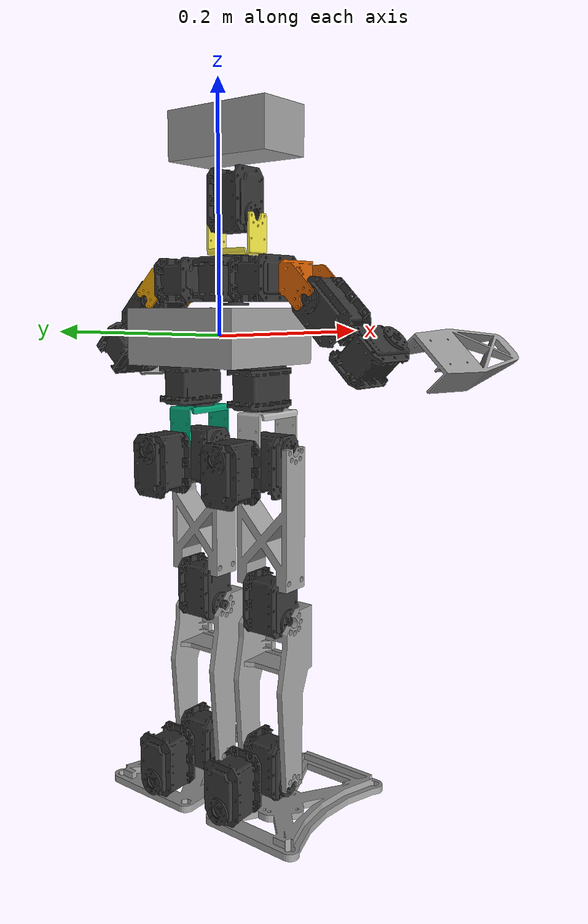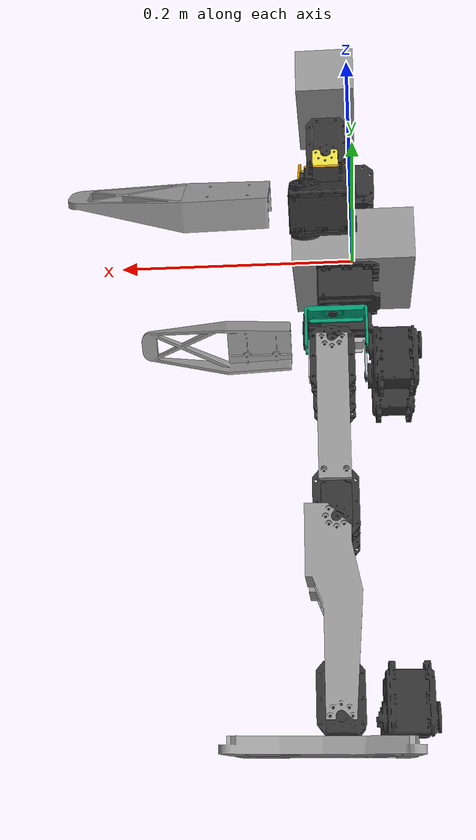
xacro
<?xml version="1.0" ?>

<robot name="boldbot" xmlns:xacro="http://www.ros.org/wiki/xacro">
  <!-- PLA: 1.24 g/cm^3 -->
  <xacro:property name="filament_density_full" value="1240" />
  <xacro:property name="infill" value=".5" />
  <xacro:property name="filament_density" value="${filament_density_full * infill}" />
  <xacro:property name="aluminium_density" value="2700" />

  <xacro:property name="damping" value="0" />
  <xacro:property name="friction" value="0.1" />

  <xacro:macro name="xmass" params="value"><mass value="${value}" /></xacro:macro>

  <xacro:macro name="inertial_cuboid" params="mass xyz rpy x_length y_length z_length">
    <inertial>
      <xacro:xmass value="${mass}" />
      <origin rpy="${rpy}" xyz="${xyz}"/>
      <inertia ixx="${mass * (y_length*y_length + z_length*z_length) / 12}" ixy="0.0" ixz="0.0"
               iyy="${mass * (x_length*x_length + z_length*z_length) / 12}" iyz="0.0"
               izz="${mass * (x_length*x_length + y_length*y_length) / 12}" />
    </inertial>
  </xacro:macro>

  <!--              iyy="${1 * (x_length*x_length + z_length*z_length) / 12}" iyz="0.0" -->

  <xacro:macro name="mx28" params="name x y z rpy">
    <link name="${name}">
      <visual>
        <origin xyz="${x} ${y} ${z}" rpy="${rpy}" />
        <geometry>
          <mesh filename="package://boldbot_description/meshes/mx28b.stl" scale="0.001 0.001 0.001" />
        </geometry>
        <material name="DarkGrey">
          <color rgba="0.20 0.20 0.20 1.0"/>
        </material>
      </visual>
      <collision>
        <origin xyz="${x} ${y} ${z}" rpy="${rpy}" />
        <geometry>
          <mesh filename="package://boldbot_description/meshes/mx28b.stl" scale="0.001 0.001 0.001" />
        </geometry>
      </collision>
      <xacro:inertial_cuboid mass="0.077" xyz="${x + 0.0105} ${y} ${z}" rpy="${rpy}" x_length="0.0506" y_length="0.0356" z_length="0.0355" />
    </link>
    <gazebo reference="${name}">
      <material>Gazebo/DarkGrey</material>
      <selfCollide>true</selfCollide>
    </gazebo>
  </xacro:macro>

  <!-- dummy first link, directly connects with torso -->
  <link name="base_link" />

  <joint name="base_joint" type="fixed">
    <parent link="base_link"/>
    <child link="torso"/>
    <origin xyz="0 0 0" rpy="0 0 0" />
  </joint>

  <link name="torso">
    <visual>
      <origin rpy="0 0 0" xyz="0 0 0" />
      <geometry>
        <box size="0.1 0.109 0.045"/>
      </geometry>
    </visual>
    <collision>
      <origin rpy="0 0 0" xyz="0 0 0" />
      <geometry>
        <box size="0.1 0.109 0.045"/>
      </geometry>
    </collision>
    <xacro:inertial_cuboid mass="0.31" xyz="0 0 0" rpy="0 0 0" x_length="0.1" y_length="0.109" z_length="0.045"/>
  </link>
  <gazebo reference="torso">
    <material>Gazebo/Grey</material>
    <selfCollide>true</selfCollide>
  </gazebo>

  <joint name="torso-mx28-head-pan" type="fixed">
    <parent link="torso" />
    <child link="mx28-head-pan" />
    <origin rpy="0 0 ${pi}" xyz="0.02 0 0.045" />
  </joint>

  <xacro:mx28 name="mx28-head-pan" x="0" y="0" z="0" rpy="0 0 0"/>

  <joint name="head-pan" type="revolute">
    <parent link="mx28-head-pan" />
    <child link="neck" />
    <origin rpy="0 0 ${-pi}" xyz="0 0 0.02" />
    <axis xyz="0 0 1" />
    <limit effort="2.8" velocity="5.6548668" lower="-2.6179939" upper="2.6179939" />
    <dynamics damping="${damping}" friction="${friction}" />
  </joint>

  <link name="neck">
    <visual>
      <origin rpy="0 0 0" xyz="0 0 0" />
      <geometry>
        <mesh filename="package://boldbot_description/meshes/neckbracketb.stl" scale="0.001 0.001 0.001"/>
      </geometry>
    </visual>
    <collision>>
      <origin rpy="0 0 0" xyz="0 0 0" />
      <geometry>
        <mesh filename="package://boldbot_description/meshes/neckbracketb.stl" scale="0.001 0.001 0.001"/>
      </geometry>
    </collision>
    <!-- mass doubled to increase stability -->
    <xacro:inertial_cuboid mass="0.025" xyz="0 0 0.029" rpy="0 0 0" x_length="0.025" y_length="0.045" z_length="0.0325" />
  </link>

  <joint name="head-tilt" type="revolute">
    <parent link="neck" />
    <child link="mx28-head-tilt" />
    <origin xyz="0 0 0.03" rpy="0 ${-pi / 2} ${-pi / 2}" />
    <axis xyz="0 0 1" />
    <limit effort="2.8" velocity="5.6548668" lower="-2.6179939" upper="2.6179939" />
    <dynamics damping="${damping}" friction="${friction}" />
  </joint>

  <xacro:mx28 name="mx28-head-tilt" x="0" y="0" z="0" rpy="0 0 0"/>

  <joint name="head-tilt-head" type="fixed">
    <parent link="mx28-head-tilt" />
    <child link="head" />
    <origin xyz="0.065 0 0" rpy="${pi / 2} 0 ${pi / 2}" />
  </joint>

  <link name="head">
    <visual>
      <origin rpy="0 0 0" xyz="0 0 0"/>
      <geometry>
        <box size="0.05 0.1 0.04" />
      </geometry>
    </visual>
    <collision>
      <origin rpy="0 0 0" xyz="0 0 0"/>
      <geometry>
        <box size="0.05 0.1 0.04" />
      </geometry>
    </collision>
    <xacro:inertial_cuboid mass="0.2" xyz="0 0 0" rpy="0 0 0" x_length="0.05" y_length="0.1" z_length="0.04" />
  </link>
  <gazebo reference="head">
    <material>Gazebo/Grey</material>
    <selfCollide>true</selfCollide>
  </gazebo>

  <joint name="head-gaze" type="fixed">
    <parent link="head" />
    <child link="gaze" />
    <origin xyz="0 0 0" rpy="0 0 0" />
  </joint>

  <link name="gaze">
  </link>

  <!-- Arms -->

  <xacro:macro name="arm" params="side">
    <xacro:property name="lr" value="${1 if side == 'l' else -1}" />

    <joint name="torso-mx28-shoulder-pitch-${side}" type="fixed">
      <parent link="torso" />
      <child link="mx28-shoulder-pitch-${side}" />
      <origin xyz="0.02 ${lr * 0.04} 0.045" rpy="${lr * pi / 2} 0 ${pi}" />
    </joint>

    <xacro:mx28 name="mx28-shoulder-pitch-${side}" x="0" y="0" z="0" rpy="0 0 0"/>

    <joint name="shoulder-pitch-${side}" type="revolute">
      <parent link="mx28-shoulder-pitch-${side}" />
      <child link="shoulder-${side}" />
      <origin xyz="0 0 0.02" rpy="0 0 0" />
      <axis xyz="0 0 1" />
      <limit effort="2.8" velocity="5.6548668" lower="-2.6179939" upper="2.6179939" />
      <dynamics damping="${damping}" friction="${friction}" />
    </joint>

    <link name="shoulder-${side}">
      <visual>
        <origin xyz="0 0 0" rpy="${pi / 2} 0 ${pi if side == 'l' else 0}" />
        <geometry>
          <mesh filename="package://boldbot_description/meshes/shoulderbracketb.stl" scale="0.001 0.001 0.001"/>
        </geometry>
      </visual>
      <xacro:inertial_cuboid mass="0.025" xyz="0 ${lr * -0.0025} 0.018" rpy="0 0 0" x_length="0.044" y_length="0.0332" z_length="0.038" />
    </link>

    <joint name="shoulder-roll-${side}" type="revolute">
      <parent link="shoulder-${side}" />
      <child link="mx28-shoulder-roll-${side}" />
      <origin xyz="0 ${lr * -0.016} 0.025" rpy="${lr * pi / 2} ${-pi / 4} ${-lr * pi / 2}" />
      <axis xyz="0 0 1" />
      <limit effort="2.8" velocity="5.6548668" lower="-2.6179939" upper="2.6179939" />
      <dynamics damping="${damping}" friction="${friction}" />
    </joint>

    <xacro:mx28 name="mx28-shoulder-roll-${side}" x="0" y="0" z="0" rpy="0 0 0"/>

    <joint name="mx28-shoulder-roll-${side}-mx28-elbow-${side}" type="fixed">
      <parent link="mx28-shoulder-roll-${side}" />
      <child link="mx28-elbow-${side}" />
      <origin xyz="0.06 0 0.016" rpy="${-lr * pi / 2} ${pi / 2} 0"/>
    </joint>

    <xacro:mx28 name="mx28-elbow-${side}" x="0" y="0" z="0" rpy="0 0 0"/>

    <joint name="elbow-${side}" type="revolute">
      <parent link="mx28-elbow-${side}" />
      <child link="lower-arm-${side}" />
      <origin xyz="0 0 0" rpy="0 0 0"/>
      <axis xyz="0 0 1" />
      <limit effort="2.8" velocity="5.6548668" lower="-2.6179939" upper="2.6179939" />
      <dynamics damping="${damping}" friction="${friction}" />
    </joint>

    <link name="lower-arm-${side}">
      <visual>
        <origin xyz="-0.055 ${-lr * 0.02} 0.02" rpy="${pi} 0 ${pi}"/>
        <geometry>
          <mesh filename="package://boldbot_description/meshes/armcoverb.stl" scale="0.001 0.001 0.001"/>
        </geometry>
      </visual>
      <collision>
        <origin xyz="-0.055 ${-lr * 0.02} 0.02" rpy="${pi} 0 ${pi}"/>
        <geometry>
          <mesh filename="package://boldbot_description/meshes/armcoverb.stl" scale="0.001 0.001 0.001"/>
        </geometry>
      </collision>
      <xacro:inertial_cuboid mass="${2 * 0.000028534 * filament_density}" xyz="-0.085 ${-lr * 0.02} 0.014" rpy="0 0 0" x_length="0.1485" y_length="0.047" z_length="0.023" />
    </link>
    <gazebo reference="lower-arm-${side}">
      <material>Gazebo/Grey</material>
      <selfCollide>true</selfCollide>
    </gazebo>
  </xacro:macro>

  <xacro:arm side="l"/>
  <xacro:arm side="r"/>

  <!-- Legs -->

  <xacro:macro name="leg" params="side">
    <xacro:property name="lr" value="${1 if side == 'l' else -1}"/>

    <joint name="torso-mx28-hip-yaw-${side}" type="fixed">
      <parent link="torso" />
      <child link="mx28-hip-yaw-${side}" />
      <origin xyz="0.018 ${lr * 0.037} -0.04" rpy="${lr * 3.141592654} 0 3.141592654"/>
    </joint>

    <xacro:mx28 name="mx28-hip-yaw-${side}" x="0" y="0" z="0" rpy="0 0 0"/>

    <joint name="hip-yaw-${side}" type="revolute">
      <parent link="mx28-hip-yaw-${side}" />
      <child link="hip-bracket-${side}" />
      <origin xyz="0 0 0.02" rpy="0 0 ${-pi / 2}" />
      <axis xyz="0 0 1" />
      <limit effort="2.8" velocity="5.6548668" lower="-2.6179939" upper="2.6179939" />
      <dynamics damping="${damping}" friction="${friction}" />
    </joint>

    <link name="hip-bracket-${side}">
      <visual>
        <origin xyz="0 0 0" rpy="0 0 0" />
        <geometry>
          <mesh filename="package://boldbot_description/meshes/hipbracketb.stl" scale="0.001 0.001 0.001"/>
        </geometry>
      </visual>
      <collision>
        <origin xyz="0 0 0" rpy="0 0 0" />
        <geometry>
          <mesh filename="package://boldbot_description/meshes/hipbracketb.stl" scale="0.001 0.001 0.001"/>
        </geometry>
      </collision>
      <xacro:inertial_cuboid mass="0.025" xyz="0 0.003 0.009" rpy="0 0 0" x_length="0.027" y_length="0.0505" z_length="0.034" />
      <!--            iyy="0.11066637" iyz="-0.0071635476" -->
    </link>

    <joint name="hip-roll-${side}" type="revolute">
      <parent link="hip-bracket-${side}" />
      <child link="mx28-hip-roll-${side}" />
      <origin xyz="0 0.049 0.0315" rpy="${pi / 2} ${-pi / 2} 0" /> <!-- TODO: guessed -->
      <axis xyz="0 0 1" />
      <limit effort="2.8" velocity="5.6548668" lower="-2.6179939" upper="2.6179939" />
      <dynamics damping="${damping}" friction="${friction}" />
    </joint>

    <xacro:mx28 name="mx28-hip-roll-${side}" x="0" y="0" z="0" rpy="0 0 0"/>

    <joint name="mx28-hip-roll-mx28-hip-pitch-${side}" type="fixed">
      <parent link="mx28-hip-roll-${side}" />
      <child link="mx28-hip-pitch-${side}" />
      <origin xyz="0 0 0.05" rpy="${lr * pi / 2} 0 0" />
      <axis xyz="0 0 1" />
    </joint>

    <xacro:mx28 name="mx28-hip-pitch-${side}" x="0" y="0" z="0" rpy="0 0 0"/>

    <joint name="hip-pitch-${side}" type="revolute">
      <parent link="mx28-hip-pitch-${side}" />
      <child link="upper-leg-${side}" />
      <origin xyz="0 0 0" rpy="0 0 0" />
      <axis xyz="0 0 1" />
      <limit effort="2.8" velocity="5.6548668" lower="-2.6179939" upper="2.6179939" />
      <dynamics damping="${damping}" friction="${friction}" />
    </joint>

    <link name="upper-leg-${side}">
      <visual>
        <origin xyz="0 0 0" rpy="${pi / 2} 0 0" />
        <geometry>
          <mesh filename="package://boldbot_description/meshes/thighb.stl" scale="0.001 0.001 0.001"/>
        </geometry>
      </visual>
      <collision>
        <origin xyz="0 0 0" rpy="${pi / 2} 0 0" />
        <geometry>
          <mesh filename="package://boldbot_description/meshes/thighb.stl" scale="0.001 0.001 0.001"/>
        </geometry>
      </collision>
      <!-- Mass and COM measured with Meshlab -->
      <xacro:inertial_cuboid mass="${0.000051158 * filament_density}" xyz="0.067 0 0" rpy="0 0 0" x_length="0.117" y_length="0.025" z_length="0.0515" />
    </link>
    <gazebo reference="upper-leg-${side}">
      <material>Gazebo/Grey</material>
      <selfCollide>true</selfCollide>
    </gazebo>

    <joint name="upper-leg-mx28-knee-${side}" type="fixed">
      <parent link="upper-leg-${side}" />
      <child link="mx28-knee-${side}" />
      <origin xyz="0.143 0 0" rpy="0 0 ${pi}" />
    </joint>

    <xacro:mx28 name="mx28-knee-${side}" x="0" y="0" z="0" rpy="0 0 0"/>

    <joint name="knee-${side}" type="revolute">
      <parent link="mx28-knee-${side}" />
      <child link="lower-leg-${side}" />
      <origin xyz="0 0 0" rpy="0 0 0" />
      <axis xyz="0 0 1" />
      <limit effort="2.8" velocity="5.6548668" lower="-2.6179939" upper="2.6179939" />
      <dynamics damping="${damping}" friction="${friction}" />
    </joint>

    <link name="lower-leg-${side}">
      <visual>
        <origin xyz="-0.0175 ${-lr * 0.019} 0" rpy="${lr * pi / 2} 0 ${pi}" />
        <geometry>
          <mesh filename="package://boldbot_description/meshes/shinb.stl" scale="0.001 0.001 0.001"/>
        </geometry>
      </visual>
      <collision>
        <origin xyz="-0.0175 ${-lr * 0.019} 0" rpy="${lr * pi / 2} 0 ${pi}" />
        <geometry>
          <mesh filename="package://boldbot_description/meshes/shinb.stl" scale="0.001 0.001 0.001"/>
        </geometry>
      </collision>
      <!-- Mass and COM measured with Meshlab -->
      <xacro:inertial_cuboid mass="${0.000055347 * filament_density}" xyz="${-0.0175 -0.055} ${-lr * (0.019 - 0.013)} 0" rpy="0 0 0" x_length="0.1555" y_length="0.042" z_length="0.051" />
    </link>
    <gazebo reference="lower-leg-${side}">
      <material>Gazebo/Grey</material>
      <selfCollide>true</selfCollide>
    </gazebo>

    <joint name="ankle-pitch-${side}" type="revolute">
      <parent link="lower-leg-${side}" />
      <child link="mx28-ankle-pitch-${side}" />
      <origin xyz="-0.143 0 0" rpy="${pi} 0 0" />
      <axis xyz="0 0 1" />
      <limit effort="2.8" velocity="5.6548668" lower="-2.6179939" upper="2.6179939" />
      <dynamics damping="${damping}" friction="${friction}" />
    </joint>

    <xacro:mx28 name="mx28-ankle-pitch-${side}" x="0" y="0" z="0" rpy="0 0 0"/>

    <joint name="mx28-ankle-pitch-mx28-ankle-roll-${side}" type="fixed">
      <parent link="mx28-ankle-pitch-${side}" />
      <child link="mx28-ankle-roll-${side}" />
      <origin xyz="0 ${-lr * 0.05} 0" rpy="${-lr * pi / 2} 0 0" />
    </joint>

    <xacro:mx28 name="mx28-ankle-roll-${side}" x="0" y="0" z="0" rpy="0 0 0"/>

    <joint name="ankle-roll-${side}" type="revolute">
      <parent link="mx28-ankle-roll-${side}" />
      <child link="${side}_ankle" />
      <origin xyz="0 0 0.05" rpy="${lr * pi} ${-pi / 2} 0" />
      <axis xyz="1 0 0" />
      <limit effort="2.8" velocity="5.6548668" lower="-2.6179939" upper="2.6179939" />
      <dynamics damping="${damping}" friction="${friction}" />
    </joint>

    <link name="${side}_ankle">
    </link>

    <joint name="${side}_ankle_foot" type="fixed">
      <parent link="${side}_ankle" />
      <child link="foot-${side}" />
      <origin xyz="0 0 -0.02" rpy="0 0 0" />
    </joint>

    <link name="foot-${side}">
      <visual>
        <origin xyz="0 ${lr * 0.01} 0" rpy="0 0 ${-pi / 2}" /> <!-- TODO: guessed y offset -->
        <geometry>
          <mesh filename="package://boldbot_description/meshes/nicefoot${side}b.stl" scale="0.001 0.001 0.001"/>
        </geometry>
      </visual>
      <collision>
        <origin xyz="0.013 ${lr * (0.02)} 0" rpy="0 0 0" />
        <geometry>
          <box size="0.14 0.0935 0.012"/>
        </geometry>
      </collision>
      <xacro:inertial_cuboid mass="${0.000062433 * filament_density}" xyz="0.013 ${lr * (0.01 + 0.0065)} -0.0023" rpy="0 0 0" x_length="0.14" y_length="0.0935" z_length="0.012" />
    </link>
    <gazebo reference="foot-${side}">
      <material>Gazebo/Grey</material>
      <selfCollide>true</selfCollide>
      <kp>1000000.0</kp>
      <kd>100.0</kd>
      <mu1>1.0</mu1>
      <mu2>1.0</mu2>
      <maxVel>0.5</maxVel>
      <minDepth>0.002</minDepth>
    </gazebo>

    <joint name="${side}_ankle_sole" type="fixed">
      <parent link="${side}_ankle" />
      <child link="${side}_sole" />
      <origin xyz="0.013 ${lr * (0.02)} ${-0.02 - 0.006}" rpy="0 0 0" />
    </joint>

    <link name="${side}_sole">
    </link>

    <joint name="${side}_sole_toe" type="fixed">
      <parent link="${side}_sole" />
      <child link="${side}_toe" />
      <origin xyz="0.07 0 0" rpy="0 0 0" />
    </joint>

    <link name="${side}_toe">
    </link>
  </xacro:macro>

  <xacro:leg side="l"/>
  <xacro:leg side="r"/>

  <gazebo>
    <plugin name="boldbot_gazebo" filename="libboldbot_gazebo_plugin.so">
    </plugin>
  </gazebo>

  <gazebo reference="head">
    <sensor name='camera' type='camera'>
      <pose>0 0 0 0 0 0</pose>
      <camera name='__default__'>
        <horizontal_fov>1.012300</horizontal_fov>
        <image>
          <width>640</width>
          <height>480</height>
        </image>
        <clip>
          <near>0.001000</near>
          <far>100.000000</far>
        </clip>
      </camera>
      <always_on>1</always_on>
      <update_rate>30</update_rate>
      <visualize>false</visualize>
      <plugin name="camera_controller" filename="libgazebo_ros_camera.so">
        <alwaysOn>true</alwaysOn>
        <updateRate>30</updateRate>
        <cameraName>darwin/camera</cameraName>
        <imageTopicName>image_raw</imageTopicName>
        <cameraInfoTopicName>camera_info</cameraInfoTopicName>
        <frameName>camera_link</frameName>
        <hackBaseline>0.07</hackBaseline>
        <distortionK1>0.0</distortionK1>
        <distortionK2>0.0</distortionK2>
        <distortionK3>0.0</distortionK3>
        <distortionT1>0.0</distortionT1>
        <distortionT2>0.0</distortionT2>
      </plugin>
    </sensor>
  </gazebo>

 <gazebo reference="torso">
    <gravity>true</gravity>
    <sensor name="imu_sensor" type="imu">
      <always_on>true</always_on>
      <update_rate>125</update_rate>
      <topic>__default_topic__</topic>
      <plugin filename="libgazebo_ros_imu_sensor.so" name="imu_plugin">
        <ros>
          <argument>~/out:=/imu/data_raw</argument>
        </ros>
        <bodyName>torso</bodyName>
        <gaussianNoise>0.0</gaussianNoise>
      </plugin>
      <pose>0 0 0 0 0 0</pose>
    </sensor>
  </gazebo>

</robot>
